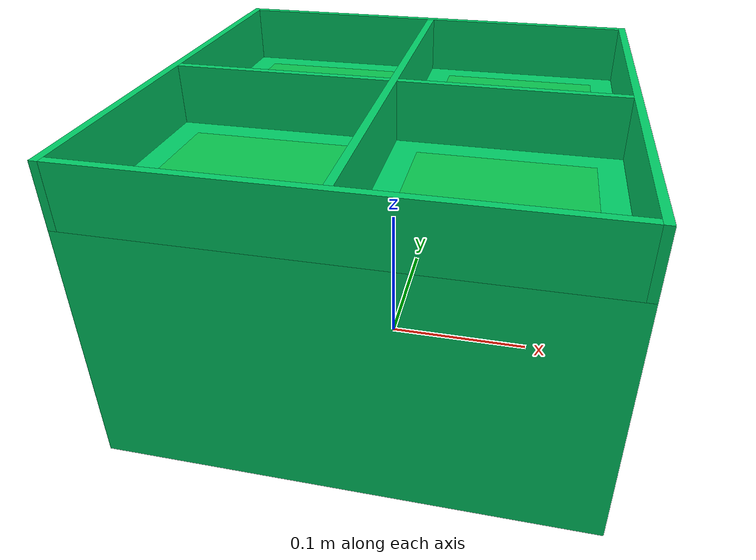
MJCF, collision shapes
<mujoco model="rm27_drone_dock">
  <compiler angle="radian" />
  <option timestep=".002" integrator="RK4" gravity="0 0 -9.81" />
  <asset>
    <mesh name="rm27_dock_visual" file="assets/rm27_dock_visual.obj" maxhullvert="4" />
  </asset>
  <worldbody>
    <body name="rm27_dock" pos="0 0 0" quat="1 0 0 0">
      <geom name="rm27_dock_visual" type="mesh" mesh="rm27_dock_visual" contype="0" conaffinity="0" group="2" rgba="0.3 0.36 0.42 1" />
      <geom name="rm27_dock_collision_bottom" type="box" pos="0 0 0.08" size="0.15 0.15 0.08" contype="1" conaffinity="1" group="3" rgba="0 .8 .4 0" friction=".8 .01 .001" solref=".01 1" solimp=".95 .99 .001" />
      <geom name="rm27_dock_collision_west" type="box" pos="-0.1475 0 0.18" size="0.0025 0.15 0.02" contype="1" conaffinity="1" group="3" rgba="0 .8 .4 0" friction=".8 .01 .001" solref=".01 1" solimp=".95 .99 .001" />
      <geom name="rm27_dock_collision_east" type="box" pos="0.1475 0 0.18" size="0.0025 0.15 0.02" contype="1" conaffinity="1" group="3" rgba="0 .8 .4 0" friction=".8 .01 .001" solref=".01 1" solimp=".95 .99 .001" />
      <geom name="rm27_dock_collision_south" type="box" pos="0 -0.1475 0.18" size="0.145 0.0025 0.02" contype="1" conaffinity="1" group="3" rgba="0 .8 .4 0" friction=".8 .01 .001" solref=".01 1" solimp=".95 .99 .001" />
      <geom name="rm27_dock_collision_north" type="box" pos="0 0.1475 0.18" size="0.145 0.0025 0.02" contype="1" conaffinity="1" group="3" rgba="0 .8 .4 0" friction=".8 .01 .001" solref=".01 1" solimp=".95 .99 .001" />
      <geom name="rm27_dock_collision_divider_x" type="box" pos="0 0 0.18" size="0.0025 0.145 0.02" contype="1" conaffinity="1" group="3" rgba="0 .8 .4 0" friction=".8 .01 .001" solref=".01 1" solimp=".95 .99 .001" />
      <geom name="rm27_dock_collision_divider_y_w" type="box" pos="-0.07375 0 0.18" size="0.07125 0.0025 0.02" contype="1" conaffinity="1" group="3" rgba="0 .8 .4 0" friction=".8 .01 .001" solref=".01 1" solimp=".95 .99 .001" />
      <geom name="rm27_dock_collision_divider_y_e" type="box" pos="0.07375 0 0.18" size="0.07125 0.0025 0.02" contype="1" conaffinity="1" group="3" rgba="0 .8 .4 0" friction=".8 .01 .001" solref=".01 1" solimp=".95 .99 .001" />
      <site name="dock_frame" size=".002" rgba="1 1 0 1" />
      <site name="slot_1" pos="-0.07375 -0.07375 0.16" type="box" size=".055 .055 .0005" rgba=".1 .8 .3 .6" />
      <site name="slot_2" pos="-0.07375 0.07375 0.16" type="box" size=".055 .055 .0005" rgba=".1 .8 .3 .6" />
      <site name="slot_3" pos="0.07375 -0.07375 0.16" type="box" size=".055 .055 .0005" rgba=".1 .8 .3 .6" />
      <site name="slot_4" pos="0.07375 0.07375 0.16" type="box" size=".055 .055 .0005" rgba=".1 .8 .3 .6" />
    </body>
  </worldbody>
</mujoco>
